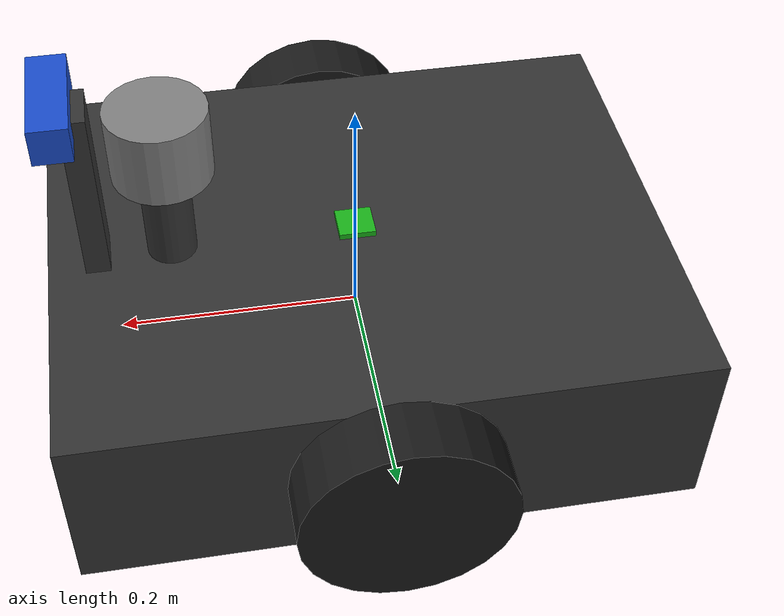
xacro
<?xml version="1.0"?>
<robot name="diff_drive_robot"
       xmlns:xacro="http://www.ros.org/wiki/xacro">

  <!-- ============================================================
       引入参数文件 (首先引入, 其他xacro依赖这些参数)
       ============================================================ -->
  <xacro:include filename="$(find robot_description)/urdf/materials.xacro"/>
  <xacro:include filename="$(find robot_description)/urdf/robot_params.xacro"/>

  <!-- ============================================================
       引入各组件
       ============================================================ -->
  <xacro:include filename="$(find robot_description)/urdf/diff_drive_base.xacro"/>
  <xacro:include filename="$(find robot_description)/urdf/sensors.xacro"/>
  <xacro:include filename="$(find robot_description)/urdf/gazebo_control.xacro"/>

  <!-- ============================================================
       Gazebo 全局属性
       ============================================================ -->
  <!-- 底盘Gazebo材质 -->
  <gazebo reference="base_link">
    <material>Gazebo/DarkGrey</material>
  </gazebo>

</robot>

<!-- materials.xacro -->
<!-- ============================================================
     材质颜色定义文件
     materials.xacro
     被 robot.urdf.xacro 引用
     ============================================================ -->
<robot xmlns:xacro="http://www.ros.org/wiki/xacro">

  <material name="black">
    <color rgba="0.1 0.1 0.1 1.0"/>
  </material>

  <material name="dark_gray">
    <color rgba="0.2 0.2 0.2 1.0"/>
  </material>

  <material name="gray">
    <color rgba="0.5 0.5 0.5 1.0"/>
  </material>

  <material name="light_gray">
    <color rgba="0.8 0.8 0.8 1.0"/>
  </material>

  <material name="white">
    <color rgba="1.0 1.0 1.0 1.0"/>
  </material>

  <material name="red">
    <color rgba="0.8 0.1 0.1 1.0"/>
  </material>

  <material name="blue">
    <color rgba="0.1 0.3 0.8 1.0"/>
  </material>

  <material name="green">
    <color rgba="0.1 0.7 0.1 1.0"/>
  </material>

  <material name="yellow">
    <color rgba="0.9 0.8 0.0 1.0"/>
  </material>

  <material name="orange">
    <color rgba="1.0 0.5 0.0 1.0"/>
  </material>

</robot>

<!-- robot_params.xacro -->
<robot xmlns:xacro="http://www.ros.org/wiki/xacro">

  <xacro:property name="chassis_length"   value="0.50"/>
  <xacro:property name="chassis_width"    value="0.40"/>
  <xacro:property name="chassis_height"   value="0.15"/>
  <xacro:property name="chassis_mass"     value="10.0"/>

  <xacro:property name="wheel_radius"     value="0.085"/>
  <xacro:property name="wheel_width"      value="0.05"/>
  <xacro:property name="wheel_mass"       value="0.5"/>
  <xacro:property name="wheel_y_offset"   value="0.225"/>
  <!-- 驱动轮在X轴上的位置(相对底盘中心)
       【TODO】若驱动轮不在底盘纵向中心则修改 -->
  <xacro:property name="wheel_x_offset"   value="0.0"/>

  <xacro:property name="caster_radius"    value="0.03"/>
  <xacro:property name="caster_mass"      value="0.1"/>
  <xacro:property name="caster_x_front"   value="0.18"/>
  <xacro:property name="caster_x_rear"    value="-0.18"/>
  <xacro:property name="caster_y_offset"  value="0.12"/>

  <!-- =================== 底盘离地高度 ===================
       驱动轮半径即为底盘最低面离地高度
       chassis_z_offset = wheel_radius - chassis_height/2
       【注意】这是底盘link的z位置, 保证轮子底部在z=0(地面)
  -->
  <xacro:property name="chassis_z_offset" value="${wheel_radius - chassis_height/2}"/>

  <xacro:property name="lidar_x"          value="0.15"/>
  <xacro:property name="lidar_y"          value="0.0"/>
  <xacro:property name="lidar_z"          value="${chassis_height/2 + 0.1}"/>
  <xacro:property name="lidar_mass"       value="0.83"/>
  <xacro:property name="lidar_radius"     value="0.04"/>
  <xacro:property name="lidar_height"     value="0.06"/>

  <xacro:property name="camera_x"         value="0.22"/>
  <xacro:property name="camera_y"         value="0.0"/>
  <xacro:property name="camera_z"         value="${chassis_height/2 + 0.25}"/>
  <xacro:property name="camera_mass"      value="0.15"/>
  <xacro:property name="camera_size_x"    value="0.03"/>
  <xacro:property name="camera_size_y"    value="0.09"/>
  <xacro:property name="camera_size_z"    value="0.03"/>

  <!-- =================== IMU安装参数 ===================
       【TODO】若有IMU则根据实际安装位置修改:
         IMU一般安装在底盘中心附近以减少杠杆效应引入的误差
  -->
  <xacro:property name="imu_x"            value="0.0"/>
  <xacro:property name="imu_y"            value="0.0"/>
  <xacro:property name="imu_z"            value="${chassis_height/2}"/>
  <xacro:property name="imu_mass"         value="0.01"/>

  <!-- =================== 惯性矩辅助宏 ===================
       以下宏用于生成常见几何体的惯性矩阵
       一般不需要修改
  -->

  <!-- 实心长方体 (box) 的惯性矩:
       m  : 质量
       dx : X方向尺寸
       dy : Y方向尺寸
       dz : Z方向尺寸
  -->
  <xacro:macro name="box_inertia" params="m dx dy dz">
    <inertial>
      <mass value="${m}"/>
      <inertia
        ixx="${m*(dy*dy + dz*dz)/12.0}"  ixy="0.0" ixz="0.0"
        iyy="${m*(dx*dx + dz*dz)/12.0}"  iyz="0.0"
        izz="${m*(dx*dx + dy*dy)/12.0}"/>
    </inertial>
  </xacro:macro>

  <!-- 实心圆柱体 (cylinder) 的惯性矩:
       m  : 质量
       r  : 半径
       h  : 高度(轴向长度)
  -->
  <xacro:macro name="cylinder_inertia" params="m r h">
    <inertial>
      <mass value="${m}"/>
      <inertia
        ixx="${m*(3*r*r + h*h)/12.0}"  ixy="0.0" ixz="0.0"
        iyy="${m*(3*r*r + h*h)/12.0}"  iyz="0.0"
        izz="${m*r*r/2.0}"/>
    </inertial>
  </xacro:macro>

  <!-- 实心球体 (sphere) 的惯性矩:
       m  : 质量
       r  : 半径
  -->
  <xacro:macro name="sphere_inertia" params="m r">
    <inertial>
      <mass value="${m}"/>
      <inertia
        ixx="${2*m*r*r/5.0}"  ixy="0.0" ixz="0.0"
        iyy="${2*m*r*r/5.0}"  iyz="0.0"
        izz="${2*m*r*r/5.0}"/>
    </inertial>
  </xacro:macro>

</robot>

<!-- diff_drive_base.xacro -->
<robot xmlns:xacro="http://www.ros.org/wiki/xacro">

  <!-- =====================================
       base_footprint: 虚拟link, 投影到地面,
       是ROS导航的标准根坐标系
       ===================================== -->
  <link name="base_footprint"/>

  <!-- base_footprint -> base_link 固定关节
       base_link 位于底盘几何中心
       z偏移 = chassis_z_offset (确保轮子底部在地面)
  -->
  <joint name="base_joint" type="fixed">
    <parent link="base_footprint"/>
    <child  link="base_link"/>
    <origin xyz="0 0 ${chassis_z_offset}" rpy="0 0 0"/>
  </joint>

  <!-- =====================================
       base_link: 底盘主体
       ===================================== -->
  <link name="base_link">
    <visual>
      <origin xyz="0 0 0" rpy="0 0 0"/>
      <geometry>
        <box size="${chassis_length} ${chassis_width} ${chassis_height}"/>
      </geometry>
      <material name="dark_gray"/>
    </visual>
    <collision>
      <origin xyz="0 0 0" rpy="0 0 0"/>
      <geometry>
        <box size="${chassis_length} ${chassis_width} ${chassis_height}"/>
      </geometry>
    </collision>
    <xacro:box_inertia m="${chassis_mass}"
                       dx="${chassis_length}"
                       dy="${chassis_width}"
                       dz="${chassis_height}"/>
  </link>

  <xacro:macro name="drive_wheel" params="prefix y_sign">

    <link name="${prefix}_wheel_link">
      <visual>
        <origin xyz="0 0 0" rpy="${pi/2} 0 0"/>
        <geometry>
          <cylinder radius="${wheel_radius}" length="${wheel_width}"/>
        </geometry>
        <material name="black"/>
      </visual>
      <collision>
        <origin xyz="0 0 0" rpy="${pi/2} 0 0"/>
        <geometry>
          <cylinder radius="${wheel_radius}" length="${wheel_width}"/>
        </geometry>
      </collision>
      <!-- 轮子惯性矩: 圆柱, 质量轴沿Y轴 -->
      <inertial>
        <mass value="${wheel_mass}"/>
        <!-- 旋转轴为Y轴, 使用圆柱体公式但交换h和r方向:
             Iyy(spin) = m*r^2/2
             Ixx=Izz(tilt) = m*(3r^2+h^2)/12  h=wheel_width
        -->
        <inertia
          ixx="${wheel_mass*(3*wheel_radius*wheel_radius + wheel_width*wheel_width)/12.0}"
          ixy="0.0" ixz="0.0"
          iyy="${wheel_mass*wheel_radius*wheel_radius/2.0}"
          iyz="0.0"
          izz="${wheel_mass*(3*wheel_radius*wheel_radius + wheel_width*wheel_width)/12.0}"/>
      </inertial>
    </link>

    <!-- base_link -> wheel 旋转关节 (绕Y轴) -->
    <joint name="${prefix}_wheel_joint" type="continuous">
      <parent link="base_link"/>
      <child  link="${prefix}_wheel_link"/>
      <origin xyz="${wheel_x_offset}
                   ${y_sign * wheel_y_offset}
                   ${-chassis_height/2 + (wheel_radius - chassis_z_offset)}"
              rpy="0 0 0"/>
      <!-- 旋转轴: Y轴 -->
      <axis xyz="0 1 0"/>
      <!-- 【TODO】根据实际电机特性设置摩擦力和阻尼:
               damping  : 粘滞阻尼系数 (N·m·s/rad), 影响转速衰减
               friction : 库伦摩擦力矩 (N·m), 静态摩擦 -->
      <dynamics damping="0.1" friction="0.01"/>
    </joint>

    <!-- Gazebo差速驱动插件需要的摩擦参数 -->
    <gazebo reference="${prefix}_wheel_link">
      <!-- 【TODO】mu1/mu2 为轮地摩擦系数(ODE物理引擎):
               mu1: 主摩擦方向(滚动方向)
               mu2: 侧向摩擦
           室内硬地面典型值: mu1=1.0, mu2=0.5
           软地面可适当减小 -->
      <mu1>1.0</mu1>
      <mu2>0.5</mu2>
      <kp>1e6</kp>
      <kd>1.0</kd>
      <material>Gazebo/Black</material>
    </gazebo>

  </xacro:macro>

  <!-- 实例化左右驱动轮 -->
  <xacro:drive_wheel prefix="left"  y_sign="1"/>
  <xacro:drive_wheel prefix="right" y_sign="-1"/>

  <xacro:macro name="caster_wheel" params="prefix x_pos y_pos">

    <link name="${prefix}_caster_link">
      <visual>
        <origin xyz="0 0 0" rpy="0 0 0"/>
        <geometry>
          <sphere radius="${caster_radius}"/>
        </geometry>
        <material name="gray"/>
      </visual>
      <collision>
        <origin xyz="0 0 0" rpy="0 0 0"/>
        <geometry>
          <sphere radius="${caster_radius}"/>
        </geometry>
      </collision>
      <xacro:sphere_inertia m="${caster_mass}" r="${caster_radius}"/>
    </link>

    <joint name="${prefix}_caster_joint" type="fixed">
      <parent link="base_link"/>
      <child  link="${prefix}_caster_link"/>
      <!-- Z: 底盘底面 - 脚轮半径 = 脚轮球心高度 -->
      <origin xyz="${x_pos} ${y_pos} ${-chassis_height/2 - caster_radius}" rpy="0 0 0"/>
    </joint>

    <!-- 脚轮设置低摩擦, 允许自由滑动 -->
    <gazebo reference="${prefix}_caster_link">
      <mu1>0.0</mu1>
      <mu2>0.0</mu2>
      <material>Gazebo/Gray</material>
    </gazebo>

  </xacro:macro>

  <!-- 实例化4个支撑脚轮 (前左/前右/后左/后右)
       【TODO】根据底盘实际支撑结构选择2脚轮或4脚轮:
         - 2脚轮: 只保留前后中心各一个, 将y_pos设为0
         - 4脚轮: 保持当前配置
  -->
  <xacro:caster_wheel prefix="front_left"
                      x_pos="${caster_x_front}"
                      y_pos="${caster_y_offset}"/>
  <xacro:caster_wheel prefix="front_right"
                      x_pos="${caster_x_front}"
                      y_pos="${-caster_y_offset}"/>
  <xacro:caster_wheel prefix="rear_left"
                      x_pos="${caster_x_rear}"
                      y_pos="${caster_y_offset}"/>
  <xacro:caster_wheel prefix="rear_right"
                      x_pos="${caster_x_rear}"
                      y_pos="${-caster_y_offset}"/>

</robot>

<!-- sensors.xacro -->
<robot xmlns:xacro="http://www.ros.org/wiki/xacro">

  <!-- ============================================================
       3D激光雷达
       ============================================================ -->

  <!-- 雷达支架link -->
  <link name="lidar_mount_link">
    <visual>
      <origin xyz="0 0 0" rpy="0 0 0"/>
      <geometry>
        <!-- 【TODO】根据实际支架尺寸调整 -->
        <cylinder radius="0.02" length="0.08"/>
      </geometry>
      <material name="dark_gray"/>
    </visual>
    <collision>
      <origin xyz="0 0 0" rpy="0 0 0"/>
      <geometry>
        <cylinder radius="0.02" length="0.08"/>
      </geometry>
    </collision>
    <xacro:cylinder_inertia m="0.05" r="0.02" h="0.08"/>
  </link>

  <joint name="lidar_mount_joint" type="fixed">
    <parent link="base_link"/>
    <child  link="lidar_mount_link"/>
    <!-- 支架安装在底盘前部顶面
         【TODO】x/y偏移根据实际安装调整 -->
    <origin xyz="${lidar_x} ${lidar_y} ${chassis_height/2 + 0.04}" rpy="0 0 0"/>
  </joint>

  <!-- 雷达主体link -->
  <link name="lidar_link">
    <visual>
      <origin xyz="0 0 0" rpy="0 0 0"/>
      <geometry>
        <cylinder radius="${lidar_radius}" length="${lidar_height}"/>
      </geometry>
      <material name="gray"/>
    </visual>
    <collision>
      <origin xyz="0 0 0" rpy="0 0 0"/>
      <geometry>
        <cylinder radius="${lidar_radius}" length="${lidar_height}"/>
      </geometry>
    </collision>
    <xacro:cylinder_inertia m="${lidar_mass}" r="${lidar_radius}" h="${lidar_height}"/>
  </link>

  <joint name="lidar_joint" type="fixed">
    <parent link="lidar_mount_link"/>
    <child  link="lidar_link"/>
    <!-- Z偏移 = 支架高度/2 + 雷达高度/2 -->
    <origin xyz="0 0 ${0.04 + lidar_height/2}" rpy="0 0 0"/>
  </joint>

  <!-- Gazebo 3D激光雷达传感器插件 -->
  <gazebo reference="lidar_link">
    <sensor type="ray" name="lidar_sensor">
      <!-- 【TODO】根据实际雷达型号修改以下参数: -->
      <pose>0 0 0 0 0 0</pose>
      <visualize>false</visualize>
      <!-- 发布频率(Hz)
           VLP-16: 10~20Hz  HDL-32: 10~20Hz  Mid-360: 10Hz
           【TODO】根据实际雷达设置 -->
      <update_rate>10</update_rate>

      <ray>
        <scan>
          <!-- 水平扫描: 360度, 采样点数
               VLP-16: 1800点(0.2°分辨率) / HDL-32: 2160点
               【TODO】horizontal_samples根据型号调整 -->
          <horizontal>
            <samples>1800</samples>
            <resolution>1</resolution>
            <min_angle>-3.14159265</min_angle>
            <max_angle>3.14159265</max_angle>
          </horizontal>

          <vertical>
            <samples>16</samples>
            <resolution>1</resolution>
            <!-- VLP-16: ±15° = ±0.2618 rad -->
            <min_angle>-0.2617993878</min_angle>
            <max_angle>0.2617993878</max_angle>
          </vertical>
        </scan>

        <range>
          <!-- 最小量程(m): 一般0.1~0.5m
               【TODO】根据型号填写 -->
          <min>0.1</min>
          <!-- 最大量程(m): VLP-16:100m HDL-32:100m Mid-360:40m
               【TODO】根据型号填写 -->
          <max>100.0</max>
          <!-- 测量分辨率(m) -->
          <resolution>0.01</resolution>
        </range>

        <noise>
          <type>gaussian</type>
          <!-- 高斯噪声标准差(m)
               【TODO】根据雷达规格书填写, 典型值0.01~0.03m -->
          <mean>0.0</mean>
          <stddev>0.01</stddev>
        </noise>
      </ray>

      <plugin name="gazebo_ros_lidar_controller"
              filename="libgazebo_ros_ray_sensor.so">
        <!-- 发布话题名称 -->
        <ros>
          <remapping>~/out:=/lidar/points</remapping>
        </ros>
        <!-- 输出格式: sensor_msgs/PointCloud2 -->
        <output_type>sensor_msgs/PointCloud2</output_type>
        <!-- 点云坐标系 -->
        <frame_name>lidar_link</frame_name>
      </plugin>

    </sensor>
    <material>Gazebo/DarkGray</material>
  </gazebo>

  <!-- ============================================================
       深度相机 (RGB-D)
       支持 RealSense D435/D455 风格的配置
       ============================================================ -->

  <!-- 相机支架link -->
  <link name="camera_mount_link">
    <visual>
      <origin xyz="0 0 0" rpy="0 0 0"/>
      <geometry>
        <!-- 【TODO】根据实际支架尺寸调整 -->
        <box size="0.02 0.04 0.15"/>
      </geometry>
      <material name="dark_gray"/>
    </visual>
    <collision>
      <origin xyz="0 0 0" rpy="0 0 0"/>
      <geometry>
        <box size="0.02 0.04 0.15"/>
      </geometry>
    </collision>
    <xacro:box_inertia m="0.05" dx="0.02" dy="0.04" dz="0.15"/>
  </link>

  <joint name="camera_mount_joint" type="fixed">
    <parent link="base_link"/>
    <child  link="camera_mount_link"/>
    <!-- 相机支架安装在底盘前部
         【TODO】x/y偏移和z高度根据实际安装调整 -->
    <origin xyz="${camera_x - 0.01} ${camera_y} ${chassis_height/2 + 0.075}" rpy="0 0 0"/>
  </joint>

  <!-- 相机主体link (RGB部分中心为光学原点) -->
  <link name="camera_link">
    <visual>
      <origin xyz="0 0 0" rpy="0 0 0"/>
      <geometry>
        <box size="${camera_size_x} ${camera_size_y} ${camera_size_z}"/>
      </geometry>
      <material name="blue"/>
    </visual>
    <collision>
      <origin xyz="0 0 0" rpy="0 0 0"/>
      <geometry>
        <box size="${camera_size_x} ${camera_size_y} ${camera_size_z}"/>
      </geometry>
    </collision>
    <xacro:box_inertia m="${camera_mass}"
                       dx="${camera_size_x}"
                       dy="${camera_size_y}"
                       dz="${camera_size_z}"/>
  </link>

  <joint name="camera_joint" type="fixed">
    <parent link="camera_mount_link"/>
    <child  link="camera_link"/>
    <!-- 相机固定在支架顶部
         【TODO】根据实际相机安装高度和水平位置调整 -->
    <origin xyz="${camera_size_x/2} 0 ${0.075}" rpy="0 0 0"/>
  </joint>

  <!-- ROS标准: 相机光学坐标系
       (Z轴向前, X轴向右, Y轴向下) vs
       ROS坐标系 (X向前, Y向左, Z向上)
       需要一个固定旋转关节做转换 -->
  <link name="camera_optical_link"/>

  <joint name="camera_optical_joint" type="fixed">
    <parent link="camera_link"/>
    <child  link="camera_optical_link"/>
    <!-- 旋转: 将ROS坐标系转换为光学坐标系
         绕X轴 -90°, 再绕Z轴 -90° -->
    <origin xyz="0 0 0" rpy="${-pi/2} 0 ${-pi/2}"/>
  </joint>

  <!-- Gazebo 深度相机传感器插件 -->
  <gazebo reference="camera_link">
    <sensor type="depth" name="depth_camera_sensor">
      <pose>0 0 0 0 0 0</pose>
      <visualize>false</visualize>
      <!-- 【TODO】根据实际相机帧率设置(RealSense D435最高90fps, 深度流通常30fps) -->
      <update_rate>30</update_rate>

      <camera name="depth_camera">
        <!-- 水平视场角(rad)
             RealSense D435: 86° ≈ 1.5010 rad
             RealSense D455: 87° ≈ 1.5184 rad
             【TODO】根据型号填写 -->
        <horizontal_fov>1.5010</horizontal_fov>

        <image>
          <!-- 图像分辨率
               【TODO】根据实际配置填写
               D435深度: 最高1280x720, 常用640x480 -->
          <width>640</width>
          <height>480</height>
          <format>R8G8B8</format>
        </image>

        <clip>
          <!-- 相机近平面/远平面(m)
               RealSense D435: 0.1~10m
               【TODO】根据型号填写 -->
          <near>0.1</near>
          <far>10.0</far>
        </clip>

        <noise>
          <type>gaussian</type>
          <!-- 深度噪声
               【TODO】典型值0.01m -->
          <mean>0.0</mean>
          <stddev>0.01</stddev>
        </noise>
      </camera>

      <plugin name="gazebo_ros_depth_camera_controller"
              filename="libgazebo_ros_camera.so">
        <ros>
          <remapping>~/image_raw:=/camera/color/image_raw</remapping>
          <remapping>~/depth/image_raw:=/camera/depth/image_rect_raw</remapping>
          <remapping>~/points:=/camera/depth/color/points</remapping>
          <remapping>~/camera_info:=/camera/color/camera_info</remapping>
          <remapping>~/depth/camera_info:=/camera/depth/camera_info</remapping>
        </ros>
        <camera_name>depth_camera</camera_name>
        <frame_name>camera_optical_link</frame_name>
        <!-- 是否发布彩色点云 -->
        <hack_baseline>0.07</hack_baseline>
      </plugin>

    </sensor>
    <material>Gazebo/Blue</material>
  </gazebo>

  <!-- ============================================================
       IMU (惯性测量单元)
       用于LIO-SAM等紧耦合SLAM算法
       ============================================================ -->
  <link name="imu_link">
    <visual>
      <origin xyz="0 0 0" rpy="0 0 0"/>
      <geometry>
        <box size="0.03 0.03 0.01"/>
      </geometry>
      <material name="green"/>
    </visual>
    <collision>
      <origin xyz="0 0 0" rpy="0 0 0"/>
      <geometry>
        <box size="0.03 0.03 0.01"/>
      </geometry>
    </collision>
    <xacro:box_inertia m="${imu_mass}" dx="0.03" dy="0.03" dz="0.01"/>
  </link>

  <joint name="imu_joint" type="fixed">
    <parent link="base_link"/>
    <child  link="imu_link"/>
    <origin xyz="${imu_x} ${imu_y} ${imu_z}" rpy="0 0 0"/>
  </joint>

  <!-- Gazebo IMU传感器插件 -->
  <gazebo reference="imu_link">
    <sensor name="imu_sensor" type="imu">
      <always_on>true</always_on>
      <!-- 【TODO】IMU更新频率, 通常100~400Hz
           LIO-SAM建议: 200Hz以上 -->
      <update_rate>200</update_rate>
      <visualize>false</visualize>

      <imu>
        <angular_velocity>
          <x>
            <!-- 陀螺仪噪声(rad/s/sqrt(Hz))
                 【TODO】根据IMU规格书填写 -->
            <noise type="gaussian">
              <mean>0.0</mean>
              <stddev>0.0004</stddev>
              <bias_mean>0.0</bias_mean>
              <bias_stddev>0.0001</bias_stddev>
            </noise>
          </x>
          <y>
            <noise type="gaussian">
              <mean>0.0</mean>
              <stddev>0.0004</stddev>
              <bias_mean>0.0</bias_mean>
              <bias_stddev>0.0001</bias_stddev>
            </noise>
          </y>
          <z>
            <noise type="gaussian">
              <mean>0.0</mean>
              <stddev>0.0004</stddev>
              <bias_mean>0.0</bias_mean>
              <bias_stddev>0.0001</bias_stddev>
            </noise>
          </z>
        </angular_velocity>
        <linear_acceleration>
          <x>
            <!-- 加速度计噪声(m/s^2/sqrt(Hz))
                 【TODO】根据IMU规格书填写 -->
            <noise type="gaussian">
              <mean>0.0</mean>
              <stddev>0.0036</stddev>
              <bias_mean>0.1</bias_mean>
              <bias_stddev>0.001</bias_stddev>
            </noise>
          </x>
          <y>
            <noise type="gaussian">
              <mean>0.0</mean>
              <stddev>0.0036</stddev>
              <bias_mean>0.1</bias_mean>
              <bias_stddev>0.001</bias_stddev>
            </noise>
          </y>
          <z>
            <noise type="gaussian">
              <mean>0.0</mean>
              <stddev>0.0036</stddev>
              <bias_mean>0.1</bias_mean>
              <bias_stddev>0.001</bias_stddev>
            </noise>
          </z>
        </linear_acceleration>
      </imu>

      <plugin name="gazebo_ros_imu_controller"
              filename="libgazebo_ros_imu_sensor.so">
        <ros>
          <remapping>~/out:=/imu/data</remapping>
        </ros>
        <initial_orientation_as_reference>false</initial_orientation_as_reference>
        <frame_name>imu_link</frame_name>
      </plugin>
    </sensor>
  </gazebo>

</robot>
